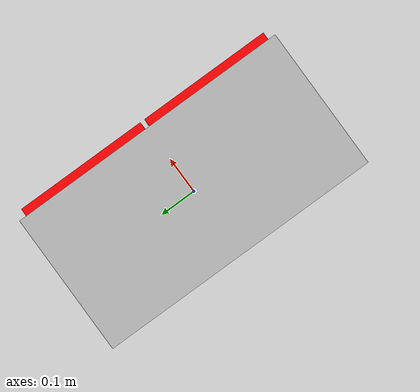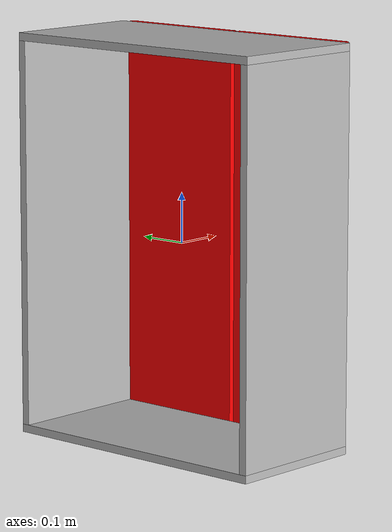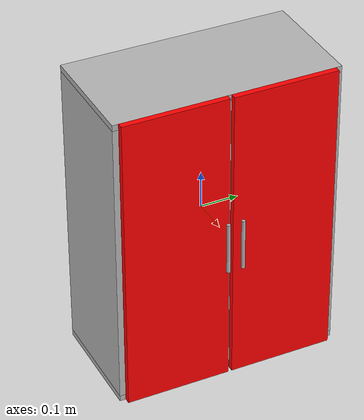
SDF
<sdf version='1.6'>
  <model name='cupboard'>

  <link name="cupboard_body">
  <pose> 0 0 0 0 0 0</pose>

  <visual name='right_wall'>
    <pose> 0 0.292 0 0 0 0</pose>
    <geometry>
      <box>
       <size>0.3 0.016 0.783</size>
      </box>
    </geometry>
  </visual>

  <visual name='left_wall'>
    <pose> 0 -0.292 0 0 0 0</pose>
    <geometry>
      <box>
       <size>0.3 0.016 0.783</size>
      </box>
    </geometry>
  </visual>

  <collision name='right_wall'>
    <pose> 0 0.292 0 0 0 0</pose>
    <geometry>
      <box>
       <size>0.3 0.016 0.783</size>
      </box>
    </geometry>
  </collision>

  <collision name='left_wall'>
    <pose> 0 -0.292 0 0 0 0</pose>
    <geometry>
      <box>
       <size>0.3 0.016 0.783</size>
      </box>
    </geometry>
  </collision>

  </link>

  <link name="top_and_bottom">
  <pose> 0 0 0 0 0 0</pose>

  <visual name='bottom'>
    <pose> 0 0 -0.3995 0 0 0</pose>
    <geometry>
      <box>
       <size>0.3 0.6 0.016</size>
      </box>
    </geometry>
  </visual>

  <visual name='top'>
    <pose> 0 0 0.3995 0 0 0</pose>
    <geometry>
      <box>
       <size>0.3 0.6 0.016</size>
      </box>
    </geometry>
  </visual>

  <collision name='bottom'>
    <pose> 0 0 -0.3995 0 0 0</pose>
    <geometry>
      <box>
       <size>0.3 0.6 0.016</size>
      </box>
    </geometry>
  </collision>

  <collision name='top'>
    <pose> 0 0 0.3995 0 0 0</pose>
    <geometry>
      <box>
       <size>0.3 0.6 0.016</size>
      </box>
    </geometry>
  </collision>
  </link>

  <!-- joint between bottom_top and world -->
  <joint name="top_and_bottom_cupboard_body" type="fixed">
    <child>top_and_bottom</child>
    <parent>cupboard_body</parent>
    <pose>0 0 0 0 0 0 </pose>
  </joint>

  <!-- joint between cupboard_body and left_door -->
  <joint name="left_door_hinge" type="revolute">
    <child>left_door</child>
    <parent>cupboard_body</parent>
    <pose>-0.008 -0.1395 0 0 0 </pose>
    <axis>
      <xyz> 0 0 1 </xyz>
      <limit>
        <effort>0</effort>
      </limit>
      <dynamics>
        <damping>1.0</damping>
      </dynamics>
    </axis>
  </joint>

  <link name="left_door">
  <pose> 0.158 -0.1445 0 0 0 0</pose>
  <inertial>
      <mass>1</mass>
      <inertia>
        <ixx>0.01042</ixx>
        <ixy>0</ixy>
        <ixz>0</ixz>
        <iyy>0.00542</iyy>
        <iyz>0</iyz>
        <izz>0.00542</izz>
      </inertia>
  </inertial>

  <visual name='cylinder'>
    <pose> 0.033 0.1245 0 0 0 0</pose>
    <geometry>
      <cylinder>
        <length>0.14</length>
        <radius>0.005</radius>
      </cylinder>
    </geometry>
  </visual>

  <visual name='slab'>
    <pose> 0 0 0 0 0 0</pose>
    <geometry>
      <box>
       <size>0.016 0.279 0.815</size>
      </box>
    </geometry>

    <material>
      <diffuse>1 0 0 0.9</diffuse>
    </material>
  </visual>

  <collision name='cylinder'>
    <pose> 0.033 0.1245 0 0 0 0</pose>
    <geometry>
      <cylinder>
        <length>0.14</length>
        <radius>0.005</radius>
      </cylinder>
    </geometry>
  </collision>

  <collision name='slab'>
    <pose> 0 0 0 0 0 0</pose>
    <geometry>
      <box>
       <size>0.016 0.279 0.815</size>
      </box>
    </geometry>
  </collision>

  </link>

  <!-- joint between cupboard_body and left_door -->
  <joint name="right_door_hinge" type="revolute">
    <child>right_door</child>
    <parent>cupboard_body</parent>
    <pose>-0.008 0.1395 0 0 0 </pose>
    <axis>
      <xyz> 0 0 1 </xyz>
      <limit>
        <effort>0</effort>
      </limit>
      <dynamics>
        <damping>1.0</damping>
      </dynamics>
    </axis>
  </joint>

  <link name="right_door">
  <pose> 0.158 0.1445 0 0 0 0</pose>
  <inertial>
      <mass>1</mass>
      <inertia>
        <ixx>0.01042</ixx>
        <ixy>0</ixy>
        <ixz>0</ixz>
        <iyy>0.00542</iyy>
        <iyz>0</iyz>
        <izz>0.00542</izz>
      </inertia>
  </inertial>

  <visual name='cylinder'>
    <pose> 0.033 -0.1245 0 0 0 0</pose>
    <geometry>
      <cylinder>
        <length>0.14</length>
        <radius>0.005</radius>
      </cylinder>
    </geometry>
  </visual>

  <visual name='slab'>
    <pose> 0 0 0 0 0 0</pose>
    <geometry>
      <box>
       <size>0.016 0.279 0.815</size>
      </box>
    </geometry>

    <material>
      <diffuse>1 0 0 0.9</diffuse>
    </material>
  </visual>

  <collision name='cylinder'>
    <pose> 0.033 -0.1245 0 0 0 0</pose>
    <geometry>
      <cylinder>
        <length>0.14</length>
        <radius>0.005</radius>
      </cylinder>
    </geometry>
  </collision>

  <collision name='slab'>
    <pose> 0 0 0 0 0 0</pose>
    <geometry>
      <box>
       <size>0.016 0.279 0.815</size>
      </box>
    </geometry>
  </collision>

  </link>

  </model>
</sdf>
